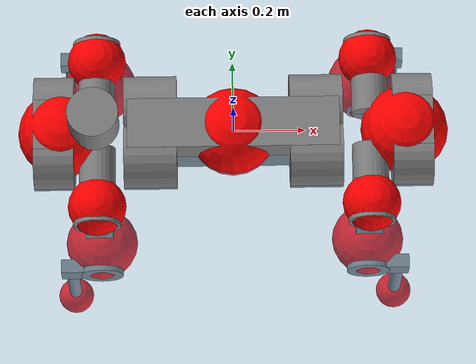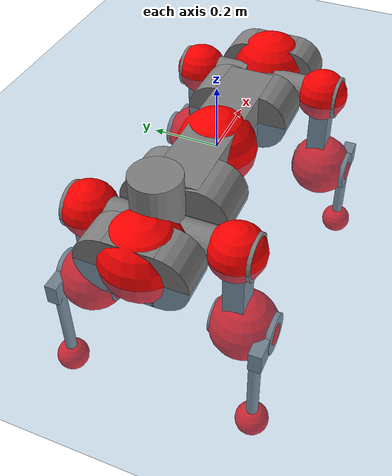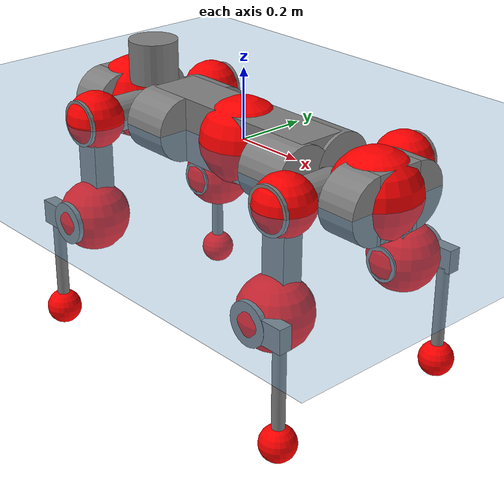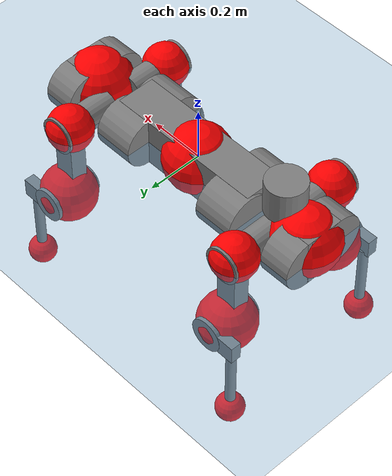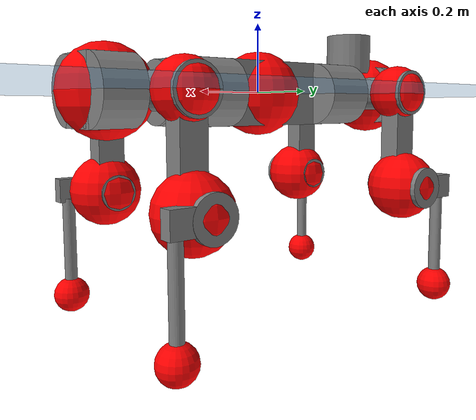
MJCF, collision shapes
<mujoco model="anymal_c">
  <compiler angle="radian" assetdir="assets" balanceinertia="true" inertiafromgeom="false"/>

  <option timestep="0.005" density="1.2" viscosity="2e-05"/>

  <size nkey="1"/>

  <visual>
    <quality shadowsize="8192"/>
    <map shadowclip="0.5"/>
  </visual>

  <default>
    <default class="/">
      <material specular="0" shininess="0.25"/>
      <geom contype="0" conaffinity="0" group="1" solref="-1000 -80"/>
      <site size="0.01 0.005 0.005" group="5"/>
      <general forcelimited="true" forcerange="-80 80" biastype="affine" gainprm="80" biasprm="0 -80 -2"/>
      <default class="anymal_c">
        <joint armature="0.01" damping="0.01" frictionloss="0.1"/>
        <default class="visual">
          <geom type="mesh" group="2"/>
          <default class="visual_zflip"/>
        </default>
        <default class="collision">
          <geom type="cylinder" group="3"/>
          <default class="foot">
            <geom size="0.03 0 0" type="sphere" condim="6" priority="1" friction="0.8 0.02 0.01" solimp="0.015 1 0.03"/>
          </default>
        </default>
      </default>
      <default class="reward_collision_sphere">
        <geom group="5" rgba="1 0 0 1"/>
      </default>
    </default>
  </default>

  <asset>
    <texture type="skybox" colorspace="auto" name="//unnamed_texture_0" builtin="gradient" rgb1="0.95 0.95 0.95" rgb2="0.95 0.95 0.95" width="100" height="600"/>
    <texture type="2d" colorspace="auto" name="texplane" builtin="checker" rgb1="0.345 0.575 0.748" rgb2="0.345 0.575 0.748" markrgb="1 1 1" width="512" height="512"/>
    <texture type="2d" colorspace="linear" name="base" file="base.png"/>
    <texture type="2d" colorspace="linear" name="top_shell" file="top_shell.png"/>
    <texture type="2d" colorspace="linear" name="bottom_shell" file="bottom_shell.png"/>
    <texture type="2d" colorspace="linear" name="remote" file="remote.png"/>
    <texture type="2d" colorspace="linear" name="hatch" file="hatch.png"/>
    <texture type="2d" colorspace="linear" name="handle" file="handle.png"/>
    <texture type="2d" colorspace="linear" name="face" file="face.png"/>
    <texture type="2d" colorspace="linear" name="battery" file="battery.png"/>
    <texture type="2d" colorspace="linear" name="lidar_cage" file="lidar_cage.png"/>
    <texture type="2d" colorspace="linear" name="depth_camera" file="depth_camera.png"/>
    <texture type="2d" colorspace="linear" name="wide_angle_camera" file="wide_angle_camera.png"/>
    <texture type="2d" colorspace="linear" name="lidar" file="lidar.png"/>
    <texture type="2d" colorspace="linear" name="drive" file="drive.png"/>
    <texture type="2d" colorspace="linear" name="hip_l" file="hip_l.png"/>
    <texture type="2d" colorspace="linear" name="shank_l" file="shank_l.png"/>
    <texture type="2d" colorspace="linear" name="foot" file="foot.png"/>
    <texture type="2d" colorspace="linear" name="thigh" file="thigh.png"/>
    <texture type="2d" colorspace="linear" name="shank_r" file="shank_r.png"/>
    <texture type="2d" colorspace="linear" name="hip_r" file="hip_r.png"/>
    <material name="MatPlane" class="/" texture="texplane" texuniform="true" texrepeat="2 2" specular="0.9" shininess="0.5"/>
    <material name="black_plastic" class="/" rgba="0.007 0.007 0.007 1"/>
    <material name="green" class="/" rgba="0.052 0.178 0.033 1"/>
    <material name="red" class="/" rgba="0.178 0.006 0.005 1"/>
    <material name="yellow" class="/" rgba="0.178 0.119 0.006 1"/>
    <material name="lwl" class="/" rgba="0.8 0.8 0.8 1"/>
    <material name="base" class="/" texture="base"/>
    <material name="top_shell" class="/" texture="top_shell"/>
    <material name="bottom_shell" class="/" texture="bottom_shell"/>
    <material name="hip_l" class="/" texture="hip_l"/>
    <material name="thigh" class="/" texture="thigh"/>
    <material name="shank_l" class="/" texture="shank_l"/>
    <material name="foot" class="/" texture="foot"/>
    <material name="hip_r" class="/" texture="hip_r"/>
    <material name="shank" class="/" texture="shank_r"/>
    <material name="hatch" class="/" texture="hatch"/>
    <material name="remote" class="/" texture="remote"/>
    <material name="handle" class="/" texture="handle"/>
    <material name="face" class="/" texture="face"/>
    <material name="depth_camera" class="/" texture="depth_camera"/>
    <material name="wide_angle_camera" class="/" texture="wide_angle_camera"/>
    <material name="battery" class="/" texture="battery"/>
    <material name="lidar_cage" class="/" texture="lidar_cage"/>
    <material name="lidar" class="/" texture="lidar"/>
    <material name="drive" class="/" texture="drive"/>
    <mesh name="base_0" class="/" file="base_0.obj"/>
    <mesh name="base_1" class="/" file="base_1.obj"/>
    <mesh name="base_2" class="/" file="base_2.obj"/>
    <mesh name="base_3" class="/" file="base_3.obj"/>
    <mesh name="base_4" class="/" file="base_4.obj"/>
    <mesh name="base_5" class="/" file="base_5.obj"/>
    <mesh name="top_shell" class="/" file="top_shell.obj"/>
    <mesh name="bottom_shell" class="/" file="bottom_shell.obj"/>
    <mesh name="remote" class="/" file="remote.obj"/>
    <mesh name="handle" class="/" file="handle.obj"/>
    <mesh name="face" class="/" file="face.obj"/>
    <mesh name="wide_angle_camera" class="/" file="wide_angle_camera.obj"/>
    <mesh name="depth_camera" class="/" file="depth_camera.obj"/>
    <mesh name="battery" class="/" file="battery.obj"/>
    <mesh name="lidar_cage" class="/" file="lidar_cage.obj"/>
    <mesh name="lidar" class="/" file="lidar.obj"/>
    <mesh name="drive" class="/" file="drive.obj"/>
    <mesh name="hip_l" class="/" file="hip_l.obj"/>
    <mesh name="thigh" class="/" file="thigh.obj"/>
    <mesh name="shank_l" class="/" file="shank_l.obj"/>
    <mesh name="foot" class="/" file="foot.obj"/>
    <mesh name="hip_r" class="/" file="hip_r.obj"/>
    <mesh name="hatch" class="/" file="hatch.obj"/>
    <mesh name="shank_r" class="/" file="shank_r.obj"/>
  </asset>

  <worldbody>
    <geom name="floor" class="/" size="100 100 0.125" type="plane" group="0" material="MatPlane"/>
    <light name="toplight_shadow" class="/" pos="0 0 5" dir="0.0990148 0.0990148 -0.990148" type="directional" ambient="0.04 0.04 0.04" diffuse="0.55 0.55 0.55" specular="0.12 0.12 0.12"/>
    <light name="toplight_fill" class="/" pos="0 0 5" dir="0.0990148 0.0990148 -0.990148" type="directional" castshadow="false" ambient="0.04 0.04 0.04" diffuse="0.3 0.3 0.3" specular="0.08 0.08 0.08"/>
    <body name="trunk" childclass="anymal_c" pos="-0.000842944 -8.98242e-05 -0.00258458" quat="0.999999 -0.000486687 0.00123418 -0.000316306">
      <inertial pos="0.00261895 0.00253676 0.0478255" quat="0.495941 0.510993 0.492653 0.500222" mass="20.064" diaginertia="0.900415 0.639978 0.214042"/>
      <joint name="//unnamed_joint_0" type="free" armature="0" damping="0" frictionloss="0"/>
      <geom name="//unnamed_geom_1" class="visual" material="green" mesh="base_0"/>
      <geom name="//unnamed_geom_2" class="visual" material="yellow" mesh="base_1"/>
      <geom name="//unnamed_geom_3" class="visual" material="red" mesh="base_2"/>
      <geom name="//unnamed_geom_4" class="visual" material="black_plastic" mesh="base_3"/>
      <geom name="//unnamed_geom_5" class="visual" material="lwl" mesh="base_4"/>
      <geom name="//unnamed_geom_6" class="visual" material="base" mesh="base_5"/>
      <geom name="trunk_1" class="collision" size="0.294738 0.0711436 0.0914703" type="box"/>
      <geom name="trunk_2" class="collision" size="0.0914703 0.0736844" pos="0.231024 0.0697634 0" quat="0.707107 0 0.707107 0"/>
      <geom name="trunk_3" class="collision" size="0.0914703 0.0736844" pos="-0.231024 0.0697634 0" quat="0.707107 0 0.707107 0"/>
      <geom name="trunk_4" class="collision" size="0.0914703 0.0736844" pos="0.231024 -0.0697634 0" quat="0.707107 0 0.707107 0"/>
      <geom name="trunk_5" class="collision" size="0.0914703 0.0736844" pos="-0.231024 -0.0697634 0" quat="0.707107 0 0.707107 0"/>
      <geom name="//unnamed_geom_12" class="visual" material="top_shell" mesh="top_shell"/>
      <geom name="//unnamed_geom_13" class="visual" material="bottom_shell" mesh="bottom_shell"/>
      <geom name="//unnamed_geom_14" class="visual" material="remote" mesh="remote"/>
      <geom name="//unnamed_geom_15" class="visual" material="handle" mesh="handle"/>
      <geom name="//unnamed_geom_16" class="visual" pos="0.440274 0 0" quat="1 0 0 0" material="face" mesh="face"/>
      <geom name="trunk_6" class="collision" size="0.0558985 0.0711436 0.0914703" pos="0.498694 0 0" type="box"/>
      <geom name="//unnamed_geom_18" class="collision" size="0.0914703 0.0558985" pos="0.498694 0.0697634 0" quat="0.707107 0 0.707107 0"/>
      <geom name="//unnamed_geom_19" class="collision" size="0.0914703 0.0558985" pos="0.498694 -0.0697634 0" quat="0.707107 0 0.707107 0"/>
      <geom name="//unnamed_geom_20" class="visual" pos="0.490353 0 -0.0283671" quat="0.965926 0 0.258819 0" material="depth_camera" mesh="depth_camera"/>
      <geom name="//unnamed_geom_21" class="visual" pos="0.544899 0 0.0148234" material="wide_angle_camera" mesh="wide_angle_camera"/>
      <geom name="//unnamed_geom_22" class="visual_zflip" pos="-0.440274 0 0" quat="0 0 0 1" material="face" mesh="face"/>
      <geom name="trunk_7" class="collision" size="0.0558985 0.0711436 0.0914703" pos="-0.498694 0 0" quat="0 0 0 1" type="box"/>
      <geom name="//unnamed_geom_24" class="collision" size="0.0914703 0.0558985" pos="-0.498694 -0.0697634 0" quat="0 -0.707107 0 0.707107"/>
      <geom name="//unnamed_geom_25" class="collision" size="0.0914703 0.0558985" pos="-0.498694 0.0697634 0" quat="0 -0.707107 0 0.707107"/>
      <geom name="//unnamed_geom_26" class="visual" pos="-0.490353 0 -0.0283671" quat="0 -0.258819 0 0.965926" material="depth_camera" mesh="depth_camera"/>
      <geom name="//unnamed_geom_27" class="visual_zflip" pos="-0.544899 0 0.0148234" quat="0 0 0 1" material="wide_angle_camera" mesh="wide_angle_camera"/>
      <geom name="//unnamed_geom_28" class="visual" material="battery" mesh="battery"/>
      <geom name="//unnamed_geom_29" class="visual" pos="0 0.0753383 0.0293125" quat="0.683013 -0.183013 0.183013 0.683013" material="depth_camera" mesh="depth_camera"/>
      <geom name="//unnamed_geom_30" class="visual" pos="0 -0.0753383 0.0293125" quat="0.683013 0.183013 0.183013 -0.683013" material="depth_camera" mesh="depth_camera"/>
      <geom name="//unnamed_geom_31" class="visual" pos="-0.386634 0 0.0727803" quat="1 0 0 0" material="lidar_cage" mesh="lidar_cage"/>
      <geom name="trunk_8" class="collision" size="0.0711436 0.0609802" pos="-0.386634 0 0.132193"/>
      <geom name="//unnamed_geom_33" class="visual" pos="-0.386634 -2.57572e-05 0.140808" quat="0.707107 0 0 -0.707107" material="lidar" mesh="lidar"/>
      <geom name="//unnamed_geom_34" class="visual" pos="0.318548 0.103646 1.10602e-10" quat="0.258819 0.965926 0 0" material="drive" mesh="drive"/>
      <geom name="//unnamed_geom_35" class="visual" pos="0.318548 -0.103646 -1.10602e-10" quat="0.258819 -0.965926 0 0" material="drive" mesh="drive"/>
      <geom name="//unnamed_geom_36" class="visual" pos="-0.318548 0.103646 -1.10602e-10" quat="0 0 0.965926 -0.258819" material="drive" mesh="drive"/>
      <geom name="//unnamed_geom_37" class="visual" pos="-0.318548 -0.103646 1.10602e-10" quat="0 0 -0.965926 -0.258819" material="drive" mesh="drive"/>
      <geom name="//unnamed_geom_38" class="visual" pos="0.123213 0 0.0722852" quat="1 0 0 0" material="hatch" mesh="hatch"/>
      <geom name="//unnamed_geom_39" class="reward_collision_sphere" size="0.12196"/>
      <geom name="//unnamed_geom_40" class="reward_collision_sphere" size="0.12196" pos="0.477982 0 0"/>
      <geom name="//unnamed_geom_41" class="reward_collision_sphere" size="0.12196" pos="-0.477982 0 0"/>
      <site name="imu" pos="0.258909 0.0168376 0.0328208" size="0.0101634"/>
      <camera name="track" pos="0 -1.99324 0" quat="0.707107 0.707107 0 0" mode="trackcom"/>
      <camera name="ego_camera" pos="0.477982 0 -0.0396083" quat="-0.5 -0.5 0.5 0.5"/>
      <body name="LF_HIP" pos="0.319411 0.104377 0.00227196" quat="0.258786 0.965935 8.4534e-05 0.00013522">
        <inertial pos="0.0574846 -0.0147195 -0.0105917" quat="-0.125422 0.718955 -0.134236 0.670339" mass="2.85438" diaginertia="0.00799625 0.00477341 0.0030752"/>
        <joint name="LF_HAA" pos="0 0 0" axis="0.999933 -0.0114415 -0.00184469" range="-0.726698 0.516119" armature="0.0100743" damping="0" frictionloss="0.108413"/>
        <geom name="//unnamed_geom_42" class="visual" pos="0 6.50623e-06 -1.06864e-06" quat="0.258819 -0.965926 0 0" material="hip_l" mesh="hip_l"/>
        <geom name="//unnamed_geom_43" class="visual" pos="0.0636247 -0.0762293 -0.0439636" quat="0.183013 -0.683013 0.683013 0.183013" material="drive" mesh="drive"/>
        <geom name="//unnamed_geom_44" class="collision" size="0.0508168 0.0711436" pos="0.0636247 -0.0119194 -0.00683739" quat="-0.353553 -0.612372 0.612372 -0.353553"/>
        <body name="LF_THIGH" pos="0.0613776 -0.0709399 -0.0391338" quat="0.182905 -0.682833 0.683183 0.183156">
          <inertial pos="0.0328502 0.000482302 -0.243495" quat="0.993334 -0.00402488 -0.0793237 0.0835441" mass="3.0749" diaginertia="0.038967 0.0283671 0.00371774"/>
          <joint name="LF_HFE" pos="0 0 0" axis="1 -2.9827e-05 8.78251e-05" stiffness="0.000410383" range="-3.17701 3.14071" armature="0.00905484" damping="0.0196531" frictionloss="0.102115"/>
          <geom name="//unnamed_geom_45" class="visual" pos="0.00130441 2.05544e-06 0" quat="0.707107 0 0 -0.707107" material="thigh" mesh="thigh"/>
          <geom name="//unnamed_geom_46" class="collision" size="0.0660619 0.0406535" pos="0.0424872 0 0" quat="0.5 0.5 -0.5 -0.5"/>
          <geom name="//unnamed_geom_47" class="collision" size="0.0381126 0.0304901 0.143623" pos="0.0318654 0 -0.13993" quat="0.707107 0 0 -0.707107" type="box"/>
          <geom name="//unnamed_geom_48" class="visual" pos="0.106537 0 -0.282209" quat="1 0 0 0" material="drive" mesh="drive"/>
          <geom name="//unnamed_geom_49" class="collision" size="0.0508168 0.0711436" pos="0.0321841 0 -0.282209" quat="0.707107 0 0.707107 0"/>
          <geom name="//unnamed_geom_50" class="reward_collision_sphere" size="0.0813069" pos="0.0265545 0 0"/>
          <body name="LF_SHANK" pos="0.105849 0.000319169 -0.283355" quat="1 1.06351e-05 1.17885e-05 3.3495e-05">
            <inertial pos="0.00349465 -0.0637081 -0.0800568" quat="0.99302 -0.11527 0.000175267 -0.0249695" mass="0.615582" diaginertia="0.0131933 0.00897077 0.0010597"/>
            <joint name="LF_KFE" pos="0 0 0" axis="0.999983 -0.00495992 0.00300173" range="-3.18722 3.17256" armature="0.0105197" damping="0.0141791" frictionloss="0.114327"/>
            <geom name="//unnamed_geom_51" class="visual" pos="0.000425338 0.00226793 0" quat="0.707107 0 0 -0.707107" material="shank_l" mesh="shank_l"/>
            <geom name="LF_kfe_act" class="collision" size="0.0609802 0.0203267" pos="0.0212436 0 0" quat="0.5 0.5 -0.5 -0.5"/>
            <geom name="//unnamed_geom_53" class="collision" size="0.0584383 0.0343014 0.0193104" pos="0.0212436 -0.0573047 0" quat="0.5 0.5 -0.5 -0.5" type="box"/>
            <geom name="//unnamed_geom_54" class="visual" pos="0.0138614 -0.0869219 -0.334661" quat="0.382683 0 0 -0.92388" material="foot" mesh="foot"/>
            <geom name="LF_calf" class="collision" size="0.0177859 0.14356" pos="0.0138615 -0.0876527 -0.16733" quat="0.707107 0 0 -0.707107"/>
            <geom name="LF_foot" class="foot" size="0.0300901" pos="0.0138615 -0.0876527 -0.312381" quat="0.707107 0 0 -0.707107"/>
            <geom name="//unnamed_geom_57" class="reward_collision_sphere" size="0.101634" pos="-0.0531091 0 0"/>
            <geom name="//unnamed_geom_58" class="reward_collision_sphere" size="0.0508168" pos="0.0138615 -0.0876527 -0.312381"/>
            <site name="LF_foot" class="foot" pos="0.0138615 -0.0876527 -0.312381" quat="0.707107 0 0 -0.707107" size="0.0101634"/>
          </body>
        </body>
      </body>
      <body name="RF_HIP" pos="0.31785 -0.103487 0.00183928" quat="0.259018 -0.965872 0.00106247 -0.00016764">
        <inertial pos="0.0600794 0.0155808 -0.00819493" quat="0.131178 0.686671 0.13341 0.702479" mass="3.02779" diaginertia="0.00785687 0.0048298 0.00311183"/>
        <joint name="RF_HAA" pos="0 0 0" axis="0.999988 0.00492792 8.10412e-05" range="-0.545232 0.697135" armature="0.00978309" damping="0.0012599" frictionloss="0.112114"/>
        <geom name="//unnamed_geom_59" class="visual" pos="0 -6.50618e-06 -1.06864e-06" quat="0.258819 0.965926 0 0" material="hip_r" mesh="hip_r"/>
        <geom name="//unnamed_geom_60" class="visual" pos="0.0636247 0.0762293 -0.0439636" quat="0.183013 0.683013 0.683013 -0.183013" material="drive" mesh="drive"/>
        <geom name="//unnamed_geom_61" class="collision" size="0.0508168 0.0711436" pos="0.0636247 0.0119194 -0.00683739" quat="-0.353553 0.612372 0.612372 0.353553"/>
        <body name="RF_THIGH" pos="0.064468 0.0702334 -0.0418033" quat="0.182962 0.683199 0.682849 -0.182979">
          <inertial pos="0.0319114 0.000202352 -0.242531" quat="0.992968 -0.00363392 -0.0778234 0.089135" mass="3.32348" diaginertia="0.041077 0.0283797 0.00401222"/>
          <joint name="RF_HFE" pos="0 0 0" axis="0.999999 0.000808955 -0.000590147" stiffness="0.015335" range="-3.13892 3.10561" armature="0.00980919" damping="0.000694286" frictionloss="0.0882874"/>
          <geom name="//unnamed_geom_62" class="visual" pos="0.00130441 2.05544e-06 0" quat="0.707107 0 0 -0.707107" material="thigh" mesh="thigh"/>
          <geom name="//unnamed_geom_63" class="collision" size="0.0660619 0.0406535" pos="0.0424872 0 0" quat="0.5 0.5 0.5 0.5"/>
          <geom name="//unnamed_geom_64" class="collision" size="0.0381126 0.0304901 0.143623" pos="0.0318654 0 -0.13993" quat="0.707107 0 0 0.707107" type="box"/>
          <geom name="//unnamed_geom_65" class="visual" pos="0.106537 0 -0.282209" quat="1 0 0 0" material="drive" mesh="drive"/>
          <geom name="//unnamed_geom_66" class="collision" size="0.0508168 0.0711436" pos="0.0321841 0 -0.282209" quat="0.707107 0 0.707107 0"/>
          <geom name="//unnamed_geom_67" class="reward_collision_sphere" size="0.0813069" pos="0.0265545 0 0"/>
          <body name="RF_SHANK" pos="0.103505 -0.000607443 -0.282803" quat="1 0.000168629 -0.000207271 0.000500057">
            <inertial pos="0.00688409 0.0583296 -0.0769751" quat="0.993337 0.113524 -0.00970497 0.0173128" mass="0.604283" diaginertia="0.0132636 0.00907433 0.00100334"/>
            <joint name="RF_KFE" pos="0 0 0" axis="0.999998 0.000209584 -0.00171976" range="-3.13212 3.1542" armature="0.0100593" damping="0" frictionloss="0.0961704"/>
            <geom name="//unnamed_geom_68" class="visual" pos="0.000425336 -0.00226792 0" quat="0.707107 0 0 0.707107" material="shank" mesh="shank_r"/>
            <geom name="RF_kfe_act" class="collision" size="0.0609802 0.0203267" pos="0.0212436 0 0" quat="0.5 0.5 0.5 0.5"/>
            <geom name="//unnamed_geom_70" class="collision" size="0.0584383 0.0343014 0.0193104" pos="0.0212436 0.0573047 0" quat="0.5 0.5 0.5 0.5" type="box"/>
            <geom name="//unnamed_geom_71" class="visual" pos="0.0138616 0.0869219 -0.334661" quat="0.382683 0 0 0.92388" material="foot" mesh="foot"/>
            <geom name="RF_calf" class="collision" size="0.0177859 0.14356" pos="0.0138615 0.0876527 -0.16733" quat="0.707107 0 0 0.707107"/>
            <geom name="RF_foot" class="foot" size="0.0279921" pos="0.0138615 0.0876527 -0.312381" quat="0.707107 0 0 0.707107"/>
            <geom name="//unnamed_geom_74" class="reward_collision_sphere" size="0.101634" pos="-0.0531091 0 0"/>
            <geom name="//unnamed_geom_75" class="reward_collision_sphere" size="0.0508168" pos="0.0138615 0.0876527 -0.312381"/>
            <site name="RF_foot" class="foot" pos="0.0138615 0.0876527 -0.312381" quat="0.707107 0 0 0.707107" size="0.0101634"/>
          </body>
        </body>
      </body>
      <body name="LH_HIP" pos="-0.317902 0.101991 0.00303429" quat="-3.35396e-05 0.000128284 0.96596 -0.258692">
        <inertial pos="0.0608361 0.0122789 -0.0108488" quat="0.133905 0.679352 0.127887 0.710067" mass="2.88151" diaginertia="0.0076563 0.00475631 0.00296812"/>
        <joint name="LH_HAA" pos="0 0 0" axis="0.999888 0.0143254 -0.00443066" range="-0.549157 0.777024" armature="0.0115289" damping="0.0107924" frictionloss="0.103378"/>
        <geom name="//unnamed_geom_76" class="visual" pos="0 -6.50618e-06 -1.06864e-06" quat="-0.258819 -0.965926 0 0" material="hip_r" mesh="hip_r"/>
        <geom name="//unnamed_geom_77" class="visual" pos="0.0636247 0.0762293 -0.0439636" quat="0.183013 0.683013 0.683013 -0.183013" material="drive" mesh="drive"/>
        <geom name="//unnamed_geom_78" class="collision" size="0.0508168 0.0711436" pos="0.0636247 0.0119194 -0.00683739" quat="-0.353553 0.612372 0.612372 0.353553"/>
        <body name="LH_THIGH" pos="0.0627961 0.0698565 -0.0403459" quat="0.184107 0.682498 0.68304 -0.183735">
          <inertial pos="0.035198 -0.00261288 -0.245523" quat="0.992776 -0.00521549 -0.0809261 0.088428" mass="3.30393" diaginertia="0.0434907 0.029857 0.00421234"/>
          <joint name="LH_HFE" pos="0 0 0" axis="0.999907 0.00729357 0.0114828" stiffness="0.00147504" range="-3.18466 3.1459" armature="0.0105173" damping="0" frictionloss="0.105616"/>
          <geom name="//unnamed_geom_79" class="visual" pos="0.00130441 2.05544e-06 0" quat="0.707107 0 0 -0.707107" material="thigh" mesh="thigh"/>
          <geom name="//unnamed_geom_80" class="collision" size="0.0660619 0.0406535" pos="0.0424872 0 0" quat="0.5 0.5 -0.5 -0.5"/>
          <geom name="//unnamed_geom_81" class="collision" size="0.0381126 0.0304901 0.143623" pos="0.0318654 0 -0.13993" quat="0.707107 0 0 -0.707107" type="box"/>
          <geom name="//unnamed_geom_82" class="visual" pos="0.106537 0 -0.282209" quat="1 0 0 0" material="drive" mesh="drive"/>
          <geom name="//unnamed_geom_83" class="collision" size="0.0508168 0.0711436" pos="0.0321841 0 -0.282209" quat="0.707107 0 0.707107 0"/>
          <geom name="//unnamed_geom_84" class="reward_collision_sphere" size="0.0813069" pos="0.0265545 0 0"/>
          <body name="LH_SHANK" pos="0.105003 -0.000188261 -0.284253" quat="0.999999 -0.00100604 -0.000465285 -0.00092051">
            <inertial pos="0.0031887 0.0630434 -0.0822827" quat="0.992656 0.114712 0.00399482 0.0382054" mass="0.601205" diaginertia="0.0133066 0.00867698 0.00104129"/>
            <joint name="LH_KFE" pos="0 0 0" axis="0.999957 -0.0019392 0.00904553" stiffness="0.00133233" range="-3.16238 3.09405" armature="0.0116107" damping="0" frictionloss="0.103351"/>
            <geom name="//unnamed_geom_85" class="visual" pos="0.000425336 -0.00226792 0" quat="-0.707107 0 0 -0.707107" material="shank" mesh="shank_r"/>
            <geom name="LH_kfe_act" class="collision" size="0.0609802 0.0203267" pos="0.0212436 0 0" quat="0.5 0.5 -0.5 -0.5"/>
            <geom name="//unnamed_geom_87" class="collision" size="0.0584383 0.0343014 0.0193104" pos="0.0212436 0.0573047 0" quat="0.5 0.5 -0.5 -0.5" type="box"/>
            <geom name="//unnamed_geom_88" class="visual" pos="0.0138616 0.0869219 -0.334661" quat="-0.382683 0 0 -0.92388" material="foot" mesh="foot"/>
            <geom name="LH_calf" class="collision" size="0.0177859 0.14356" pos="0.0138615 0.0876527 -0.16733" quat="0.707107 0 0 -0.707107"/>
            <geom name="LH_foot" class="foot" size="0.0320205" pos="0.0138615 0.0876527 -0.312381" quat="0.707107 0 0 -0.707107"/>
            <geom name="//unnamed_geom_91" class="reward_collision_sphere" size="0.101634" pos="-0.0531091 0 0"/>
            <geom name="//unnamed_geom_92" class="reward_collision_sphere" size="0.0508168" pos="0.0138615 0.0876527 -0.312381"/>
            <site name="LH_foot" class="foot" pos="0.0138615 0.0876527 -0.312381" quat="0.707107 0 0 -0.707107" size="0.0101634"/>
          </body>
        </body>
      </body>
      <body name="RH_HIP" pos="-0.316078 -0.104356 0.00323267" quat="-4.7438e-05 -1.58063e-05 -0.965874 -0.259011">
        <inertial pos="0.0575175 -0.0171408 -0.008271" quat="-0.140855 0.706151 -0.138321 0.679984" mass="2.92778" diaginertia="0.00845009 0.00502656 0.0032888"/>
        <joint name="RH_HAA" pos="0 0 0" axis="0.999928 0.00372024 -0.011444" stiffness="0.00130893" range="-0.743997 0.494888" armature="0.0100922" damping="0.00999954" frictionloss="0.113764"/>
        <geom name="//unnamed_geom_93" class="visual" pos="0 6.50623e-06 -1.06864e-06" quat="-0.258819 0.965926 0 0" material="hip_l" mesh="hip_l"/>
        <geom name="//unnamed_geom_94" class="visual" pos="0.0636247 -0.0762293 -0.0439636" quat="-0.183013 0.683013 -0.683013 -0.183013" material="drive" mesh="drive"/>
        <geom name="//unnamed_geom_95" class="collision" size="0.0508168 0.0711436" pos="0.0636247 -0.0119194 -0.00683739" quat="0.353553 0.612372 -0.612372 0.353553"/>
        <body name="RH_THIGH" pos="0.0640595 -0.0720128 -0.0434053" quat="-0.183522 0.682895 -0.683061 -0.182761">
          <inertial pos="0.033585 -0.00144631 -0.245889" quat="0.993506 -0.0125128 -0.0731864 0.0862206" mass="3.14131" diaginertia="0.0425295 0.0294413 0.00395758"/>
          <joint name="RH_HFE" pos="0 0 0" axis="0.999992 0.00154211 0.00374604" range="-3.12995 3.09333" armature="0.0100422" damping="0.00439647" frictionloss="0.105581"/>
          <geom name="//unnamed_geom_96" class="visual" pos="0.00130441 2.05544e-06 0" quat="0.707107 0 0 -0.707107" material="thigh" mesh="thigh"/>
          <geom name="//unnamed_geom_97" class="collision" size="0.0660619 0.0406535" pos="0.0424872 0 0" quat="0.5 0.5 0.5 0.5"/>
          <geom name="//unnamed_geom_98" class="collision" size="0.0381126 0.0304901 0.143623" pos="0.0318654 0 -0.13993" quat="0.707107 0 0 0.707107" type="box"/>
          <geom name="//unnamed_geom_99" class="visual" pos="0.106537 0 -0.282209" quat="1 0 0 0" material="drive" mesh="drive"/>
          <geom name="//unnamed_geom_100" class="collision" size="0.0508168 0.0711436" pos="0.0321841 0 -0.282209" quat="0.707107 0 0.707107 0"/>
          <geom name="//unnamed_geom_101" class="reward_collision_sphere" size="0.0813069" pos="0.0265545 0 0"/>
          <body name="RH_SHANK" pos="0.103993 0.00298234 -0.284398" quat="0.999999 -0.000417614 -0.000613779 -0.00088396">
            <inertial pos="0.00566314 -0.0612997 -0.0800625" quat="0.994355 -0.1044 -0.00370342 -0.0185541" mass="0.640372" diaginertia="0.0142418 0.00944778 0.00105296"/>
            <joint name="RH_KFE" pos="0 0 0" axis="0.999914 0.0128607 0.00255721" range="-3.07159 3.15259" armature="0.0102259" damping="0" frictionloss="0.105178"/>
            <geom name="//unnamed_geom_102" class="visual" pos="0.000425338 0.00226793 0" quat="0.707107 0 0 -0.707107" material="shank_l" mesh="shank_l"/>
            <geom name="RH_kfe_act" class="collision" size="0.0609802 0.0203267" pos="0.0212436 0 0" quat="0.5 0.5 0.5 0.5"/>
            <geom name="//unnamed_geom_104" class="collision" size="0.0584383 0.0343014 0.0193104" pos="0.0212436 -0.0573047 0" quat="0.5 0.5 0.5 0.5" type="box"/>
            <geom name="//unnamed_geom_105" class="visual" pos="0.0138614 -0.0869219 -0.334661" quat="0.382683 0 0 -0.92388" material="foot" mesh="foot"/>
            <geom name="RH_calf" class="collision" size="0.0177859 0.14356" pos="0.0138615 -0.0876527 -0.16733" quat="0.707107 0 0 0.707107"/>
            <geom name="RH_foot" class="foot" size="0.0287916" pos="0.0138615 -0.0876527 -0.312381" quat="0.707107 0 0 0.707107"/>
            <geom name="//unnamed_geom_108" class="reward_collision_sphere" size="0.101634" pos="-0.0531091 0 0"/>
            <geom name="//unnamed_geom_109" class="reward_collision_sphere" size="0.0508168" pos="0.0138615 -0.0876527 -0.312381"/>
            <site name="RH_foot" class="foot" pos="0.0138615 -0.0876527 -0.312381" quat="0.707107 0 0 0.707107" size="0.0101634"/>
          </body>
        </body>
      </body>
    </body>
  </worldbody>

  <contact>
    <pair class="/" geom1="floor" geom2="LF_foot" name="//unnamed_contact_0"/>
    <pair class="/" geom1="floor" geom2="RF_foot" name="//unnamed_contact_1"/>
    <pair class="/" geom1="floor" geom2="LH_foot" name="//unnamed_contact_2"/>
    <pair class="/" geom1="floor" geom2="RH_foot" name="//unnamed_contact_3"/>
  </contact>

  <actuator>
    <general name="LF_HAA" class="/" joint="LF_HAA" forcerange="-81.3838 81.3838" gainprm="81.3836" biasprm="0 -81.3836 -1.85497"/>
    <general name="LF_HFE" class="/" joint="LF_HFE" forcerange="-77.9011 77.9011" gainprm="81.3836" biasprm="0 -81.3836 -1.85497"/>
    <general name="LF_KFE" class="/" joint="LF_KFE" forcerange="-86.8243 86.8243" gainprm="81.3836" biasprm="0 -81.3836 -1.85497"/>
    <general name="RF_HAA" class="/" joint="RF_HAA" forcerange="-85.078 85.078" gainprm="81.3836" biasprm="0 -81.3836 -1.85497"/>
    <general name="RF_HFE" class="/" joint="RF_HFE" forcerange="-88.2477 88.2477" gainprm="81.3836" biasprm="0 -81.3836 -1.85497"/>
    <general name="RF_KFE" class="/" joint="RF_KFE" forcerange="-80.4819 80.4819" gainprm="81.3836" biasprm="0 -81.3836 -1.85497"/>
    <general name="LH_HAA" class="/" joint="LH_HAA" forcerange="-80.5973 80.5973" gainprm="81.3836" biasprm="0 -81.3836 -1.85497"/>
    <general name="LH_HFE" class="/" joint="LH_HFE" forcerange="-73.6272 73.6272" gainprm="81.3836" biasprm="0 -81.3836 -1.85497"/>
    <general name="LH_KFE" class="/" joint="LH_KFE" forcerange="-90.3422 90.3422" gainprm="81.3836" biasprm="0 -81.3836 -1.85497"/>
    <general name="RH_HAA" class="/" joint="RH_HAA" forcerange="-81.476 81.476" gainprm="81.3836" biasprm="0 -81.3836 -1.85497"/>
    <general name="RH_HFE" class="/" joint="RH_HFE" forcerange="-81.9603 81.9603" gainprm="81.3836" biasprm="0 -81.3836 -1.85497"/>
    <general name="RH_KFE" class="/" joint="RH_KFE" forcerange="-87.0706 87.0706" gainprm="81.3836" biasprm="0 -81.3836 -1.85497"/>
  </actuator>

  <sensor>
    <gyro site="imu" name="imu_angular_velocity"/>
    <velocimeter site="imu" name="imu_linear_velocity"/>
    <framelinvel objtype="site" objname="LF_foot" name="LF_foot_global_linear_velocity"/>
    <framelinvel objtype="site" objname="RF_foot" name="RF_foot_global_linear_velocity"/>
    <framelinvel objtype="site" objname="LH_foot" name="LH_foot_global_linear_velocity"/>
    <framelinvel objtype="site" objname="RH_foot" name="RH_foot_global_linear_velocity"/>
  </sensor>

  <keyframe>
    <key name="home" qpos="0 0 0.55 1 0 0 0 0 0.4 -0.8 0 -0.4 0.8 0 -0.4 0.8 0 0.4 -0.8"/>
  </keyframe>
</mujoco>
